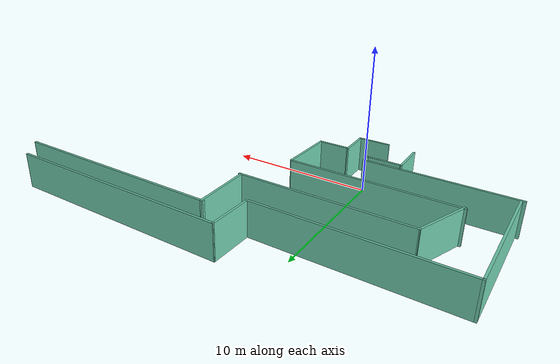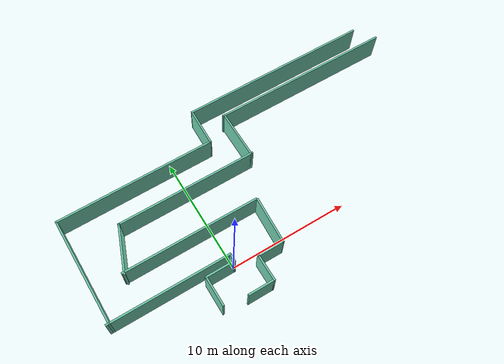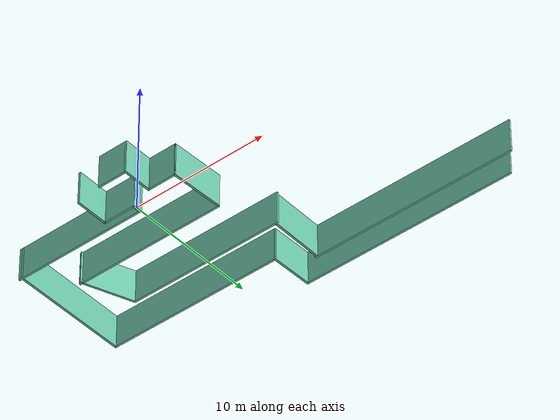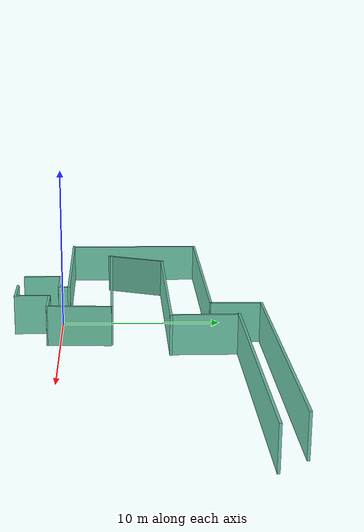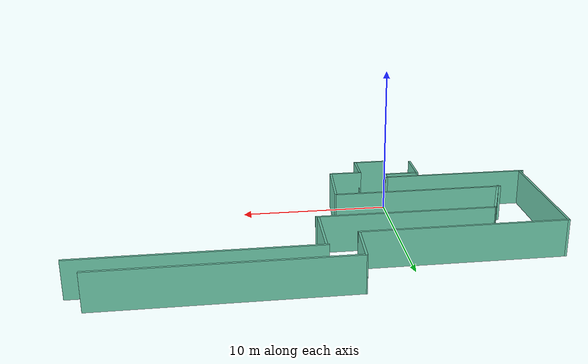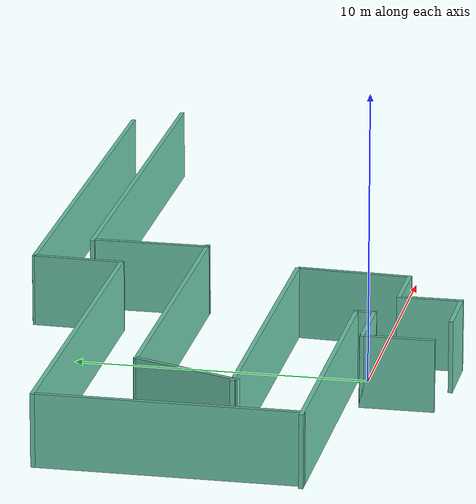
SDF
<?xml version='1.0'?>
<sdf version='1.7'>
  <model name='parkmaze'>
    <pose>5.25121 4.6679 0 0 -0 0</pose>
    <link name='Wall_0'>
      <collision name='Wall_0_Collision'>
        <geometry>
          <box>
            <size>2.25 0.15 2.5</size>
          </box>
        </geometry>
        <pose>0 0 1.25 0 -0 0</pose>
      </collision>
      <visual name='Wall_0_Visual'>
        <pose>0 0 1.25 0 -0 0</pose>
        <geometry>
          <box>
            <size>2.25 0.15 2.5</size>
          </box>
        </geometry>
        <material>
          <script>
            <uri>file://media/materials/scripts/gazebo.material</uri>
            <name>Gazebo/Grey</name>
          </script>
          <ambient>0.435294 0.796078 0.67451 1</ambient>
        </material>
        <meta>
          <layer>0</layer>
        </meta>
      </visual>
      <pose>-4.67121 -7.5279 0 0 -0 0</pose>
    </link>
    <link name='Wall_1'>
      <collision name='Wall_1_Collision'>
        <geometry>
          <box>
            <size>2.25 0.15 2.5</size>
          </box>
        </geometry>
        <pose>0 0 1.25 0 -0 0</pose>
      </collision>
      <visual name='Wall_1_Visual'>
        <pose>0 0 1.25 0 -0 0</pose>
        <geometry>
          <box>
            <size>2.25 0.15 2.5</size>
          </box>
        </geometry>
        <material>
          <script>
            <uri>file://media/materials/scripts/gazebo.material</uri>
            <name>Gazebo/Grey</name>
          </script>
          <ambient>0.435294 0.796078 0.67451 1</ambient>
        </material>
        <meta>
          <layer>0</layer>
        </meta>
      </visual>
      <pose>-3.62121 -6.4779 0 0 -0 1.5708</pose>
    </link>
    <link name='Wall_10'>
      <collision name='Wall_10_Collision'>
        <geometry>
          <box>
            <size>2.5 0.15 2.5</size>
          </box>
        </geometry>
        <pose>0 0 1.25 0 -0 0</pose>
      </collision>
      <visual name='Wall_10_Visual'>
        <pose>0 0 1.25 0 -0 0</pose>
        <geometry>
          <box>
            <size>2.5 0.15 2.5</size>
          </box>
        </geometry>
        <material>
          <script>
            <uri>file://media/materials/scripts/gazebo.material</uri>
            <name>Gazebo/Grey</name>
          </script>
          <ambient>0.435294 0.796078 0.67451 1</ambient>
        </material>
        <meta>
          <layer>0</layer>
        </meta>
      </visual>
      <pose>-7.67661 -6.04728 0 0 -0 1.5708</pose>
    </link>
    <link name='Wall_11'>
      <collision name='Wall_11_Collision'>
        <geometry>
          <box>
            <size>2.5 0.15 2.5</size>
          </box>
        </geometry>
        <pose>0 0 1.25 0 -0 0</pose>
      </collision>
      <visual name='Wall_11_Visual'>
        <pose>0 0 1.25 0 -0 0</pose>
        <geometry>
          <box>
            <size>2.5 0.15 2.5</size>
          </box>
        </geometry>
        <material>
          <script>
            <uri>file://media/materials/scripts/gazebo.material</uri>
            <name>Gazebo/Grey</name>
          </script>
          <ambient>0.435294 0.796078 0.67451 1</ambient>
        </material>
        <meta>
          <layer>0</layer>
        </meta>
      </visual>
      <pose>-6.50161 -4.87228 0 0 -0 0</pose>
    </link>
    <link name='Wall_12'>
      <collision name='Wall_12_Collision'>
        <geometry>
          <box>
            <size>0.75 0.15 2.5</size>
          </box>
        </geometry>
        <pose>0 0 1.25 0 -0 0</pose>
      </collision>
      <visual name='Wall_12_Visual'>
        <pose>0 0 1.25 0 -0 0</pose>
        <geometry>
          <box>
            <size>0.75 0.15 2.5</size>
          </box>
        </geometry>
        <material>
          <script>
            <uri>file://media/materials/scripts/gazebo.material</uri>
            <name>Gazebo/Grey</name>
          </script>
          <ambient>0.435294 0.796078 0.67451 1</ambient>
        </material>
        <meta>
          <layer>0</layer>
        </meta>
      </visual>
      <pose>-5.32661 -4.57228 0 0 -0 1.5708</pose>
    </link>
    <link name='Wall_13'>
      <collision name='Wall_13_Collision'>
        <geometry>
          <box>
            <size>10.1196 0.15 2.5</size>
          </box>
        </geometry>
        <pose>0 0 1.25 0 -0 0</pose>
      </collision>
      <visual name='Wall_13_Visual'>
        <pose>0 0 1.25 0 -0 0</pose>
        <geometry>
          <box>
            <size>10.1196 0.15 2.5</size>
          </box>
        </geometry>
        <material>
          <script>
            <uri>file://media/materials/scripts/gazebo.material</uri>
            <name>Gazebo/Grey</name>
          </script>
          <ambient>0.435294 0.796078 0.67451 1</ambient>
        </material>
        <meta>
          <layer>0</layer>
        </meta>
      </visual>
      <pose>-10.3114 -4.27228 0 0 -0 3.14159</pose>
    </link>
    <link name='Wall_14'>
      <collision name='Wall_14_Collision'>
        <geometry>
          <box>
            <size>8.88044 0.15 2.5</size>
          </box>
        </geometry>
        <pose>0 0 1.25 0 -0 0</pose>
      </collision>
      <visual name='Wall_14_Visual'>
        <pose>0 0 1.25 0 -0 0</pose>
        <geometry>
          <box>
            <size>8.88044 0.15 2.5</size>
          </box>
        </geometry>
        <material>
          <script>
            <uri>file://media/materials/scripts/gazebo.material</uri>
            <name>Gazebo/Grey</name>
          </script>
          <ambient>0.435294 0.796078 0.67451 1</ambient>
        </material>
        <meta>
          <layer>0</layer>
        </meta>
      </visual>
      <pose>-15.1005 0.092937 0 0 -0 1.5708</pose>
    </link>
    <link name='Wall_15'>
      <collision name='Wall_15_Collision'>
        <geometry>
          <box>
            <size>13.3696 0.15 2.5</size>
          </box>
        </geometry>
        <pose>0 0 1.25 0 -0 0</pose>
      </collision>
      <visual name='Wall_15_Visual'>
        <pose>0 0 1.25 0 -0 0</pose>
        <geometry>
          <box>
            <size>13.3696 0.15 2.5</size>
          </box>
        </geometry>
        <material>
          <script>
            <uri>file://media/materials/scripts/gazebo.material</uri>
            <name>Gazebo/Grey</name>
          </script>
          <ambient>0.435294 0.796078 0.67451 1</ambient>
        </material>
        <meta>
          <layer>0</layer>
        </meta>
      </visual>
      <pose>-8.49074 4.45815 0 0 -0 0</pose>
    </link>
    <link name='Wall_16'>
      <collision name='Wall_16_Collision'>
        <geometry>
          <box>
            <size>3.21895 0.15 2.5</size>
          </box>
        </geometry>
        <pose>0 0 1.25 0 -0 0</pose>
      </collision>
      <visual name='Wall_16_Visual'>
        <pose>0 0 1.25 0 -0 0</pose>
        <geometry>
          <box>
            <size>3.21895 0.15 2.5</size>
          </box>
        </geometry>
        <material>
          <script>
            <uri>file://media/materials/scripts/gazebo.material</uri>
            <name>Gazebo/Grey</name>
          </script>
          <ambient>0.435294 0.796078 0.67451 1</ambient>
        </material>
        <meta>
          <layer>0</layer>
        </meta>
      </visual>
      <pose>-1.83205 5.99185 0 0 -0 1.53892</pose>
    </link>
    <link name='Wall_17'>
      <collision name='Wall_17_Collision'>
        <geometry>
          <box>
            <size>16 0.15 2.5</size>
          </box>
        </geometry>
        <pose>0 0 1.25 0 -0 0</pose>
      </collision>
      <visual name='Wall_17_Visual'>
        <pose>0 0 1.25 0 -0 0</pose>
        <geometry>
          <box>
            <size>16 0.15 2.5</size>
          </box>
        </geometry>
        <material>
          <script>
            <uri>file://media/materials/scripts/gazebo.material</uri>
            <name>Gazebo/Grey</name>
          </script>
          <ambient>0.435294 0.796078 0.67451 1</ambient>
        </material>
        <meta>
          <layer>0</layer>
        </meta>
      </visual>
      <pose>6.14187 7.52555 0 0 -0 0</pose>
    </link>
    <link name='Wall_2'>
      <collision name='Wall_2_Collision'>
        <geometry>
          <box>
            <size>2.25 0.15 2.5</size>
          </box>
        </geometry>
        <pose>0 0 1.25 0 -0 0</pose>
      </collision>
      <visual name='Wall_2_Visual'>
        <pose>0 0 1.25 0 -0 0</pose>
        <geometry>
          <box>
            <size>2.25 0.15 2.5</size>
          </box>
        </geometry>
        <material>
          <script>
            <uri>file://media/materials/scripts/gazebo.material</uri>
            <name>Gazebo/Grey</name>
          </script>
          <ambient>0.435294 0.796078 0.67451 1</ambient>
        </material>
        <meta>
          <layer>0</layer>
        </meta>
      </visual>
      <pose>-2.57121 -5.4279 0 0 -0 0</pose>
    </link>
    <link name='Wall_3'>
      <collision name='Wall_3_Collision'>
        <geometry>
          <box>
            <size>3.93984 0.15 2.5</size>
          </box>
        </geometry>
        <pose>0 0 1.25 0 -0 0</pose>
      </collision>
      <visual name='Wall_3_Visual'>
        <pose>0 0 1.25 0 -0 0</pose>
        <geometry>
          <box>
            <size>3.93984 0.15 2.5</size>
          </box>
        </geometry>
        <material>
          <script>
            <uri>file://media/materials/scripts/gazebo.material</uri>
            <name>Gazebo/Grey</name>
          </script>
          <ambient>0.435294 0.796078 0.67451 1</ambient>
        </material>
        <meta>
          <layer>0</layer>
        </meta>
      </visual>
      <pose>-1.42339 -3.53551 0 0 -0 1.51915</pose>
    </link>
    <link name='Wall_4'>
      <collision name='Wall_4_Collision'>
        <geometry>
          <box>
            <size>11.4022 0.15 2.5</size>
          </box>
        </geometry>
        <pose>0 0 1.25 0 -0 0</pose>
      </collision>
      <visual name='Wall_4_Visual'>
        <pose>0 0 1.25 0 -0 0</pose>
        <geometry>
          <box>
            <size>11.4022 0.15 2.5</size>
          </box>
        </geometry>
        <material>
          <script>
            <uri>file://media/materials/scripts/gazebo.material</uri>
            <name>Gazebo/Grey</name>
          </script>
          <ambient>0.435294 0.796078 0.67451 1</ambient>
        </material>
        <meta>
          <layer>0</layer>
        </meta>
      </visual>
      <pose>-7.04947 -1.54529 0 0 -0 3.14159</pose>
    </link>
    <link name='Wall_5'>
      <collision name='Wall_5_Collision'>
        <geometry>
          <box>
            <size>3.97126 0.15 2.5</size>
          </box>
        </geometry>
        <pose>0 0 1.25 0 -0 0</pose>
      </collision>
      <visual name='Wall_5_Visual'>
        <pose>0 0 1.25 0 -0 0</pose>
        <geometry>
          <box>
            <size>3.97126 0.15 2.5</size>
          </box>
        </geometry>
        <material>
          <script>
            <uri>file://media/materials/scripts/gazebo.material</uri>
            <name>Gazebo/Grey</name>
          </script>
          <ambient>0.435294 0.796078 0.67451 1</ambient>
        </material>
        <meta>
          <layer>0</layer>
        </meta>
      </visual>
      <pose>-11.893 0.140581 0 0 -0 1.20423</pose>
    </link>
    <link name='Wall_6'>
      <collision name='Wall_6_Collision'>
        <geometry>
          <box>
            <size>11.75 0.15 2.5</size>
          </box>
        </geometry>
        <pose>0 0 1.25 0 -0 0</pose>
      </collision>
      <visual name='Wall_6_Visual'>
        <pose>0 0 1.25 0 -0 0</pose>
        <geometry>
          <box>
            <size>11.75 0.15 2.5</size>
          </box>
        </geometry>
        <material>
          <script>
            <uri>file://media/materials/scripts/gazebo.material</uri>
            <name>Gazebo/Grey</name>
          </script>
          <ambient>0.435294 0.796078 0.67451 1</ambient>
        </material>
        <meta>
          <layer>0</layer>
        </meta>
      </visual>
      <pose>-5.40817 1.92428 0 0 -0 0</pose>
    </link>
    <link name='Wall_7'>
      <collision name='Wall_7_Collision'>
        <geometry>
          <box>
            <size>4.16304 0.15 2.5</size>
          </box>
        </geometry>
        <pose>0 0 1.25 0 -0 0</pose>
      </collision>
      <visual name='Wall_7_Visual'>
        <pose>0 0 1.25 0 -0 0</pose>
        <geometry>
          <box>
            <size>4.16304 0.15 2.5</size>
          </box>
        </geometry>
        <material>
          <script>
            <uri>file://media/materials/scripts/gazebo.material</uri>
            <name>Gazebo/Grey</name>
          </script>
          <ambient>0.435294 0.796078 0.67451 1</ambient>
        </material>
        <meta>
          <layer>0</layer>
        </meta>
      </visual>
      <pose>0.294004 3.9308 0 0 -0 1.5708</pose>
    </link>
    <link name='Wall_8'>
      <collision name='Wall_8_Collision'>
        <geometry>
          <box>
            <size>15.25 0.15 2.5</size>
          </box>
        </geometry>
        <pose>0 0 1.25 0 -0 0</pose>
      </collision>
      <visual name='Wall_8_Visual'>
        <pose>0 0 1.25 0 -0 0</pose>
        <geometry>
          <box>
            <size>15.25 0.15 2.5</size>
          </box>
        </geometry>
        <material>
          <script>
            <uri>file://media/materials/scripts/gazebo.material</uri>
            <name>Gazebo/Grey</name>
          </script>
          <ambient>0.435294 0.796078 0.67451 1</ambient>
        </material>
        <meta>
          <layer>0</layer>
        </meta>
      </visual>
      <pose>7.74618 5.93732 0 0 -0 0</pose>
    </link>
    <static>1</static>
  </model>
</sdf>
